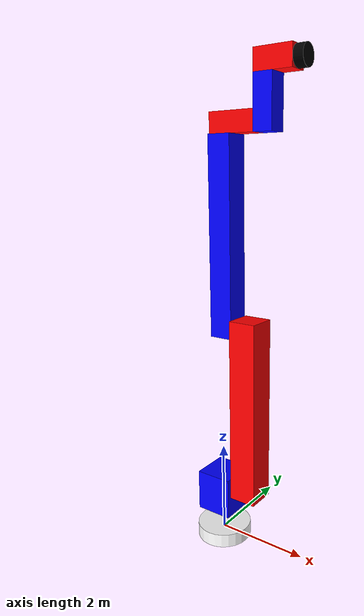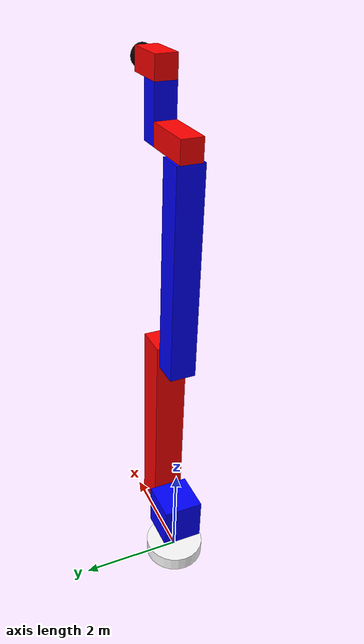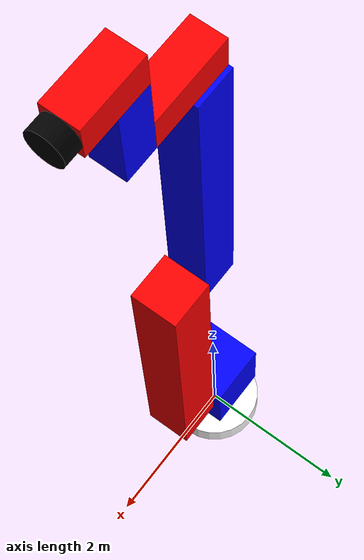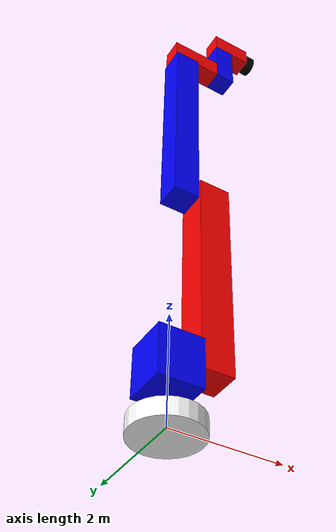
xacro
<?xml version="1.0"?>
<robot xmlns:xacro="http://www.ros.org/wiki/xacro" name="yurobot">
    <xacro:arg name="initial_positions_file" default="initial_positions.yaml" />

    <!-- Import yurobot urdf file -->
    <xacro:include filename="$(find myrobot_description)/urdf/robot_base.urdf" />

    <!-- Import control_xacro -->
    <xacro:include filename="yurobot.ros2_control.xacro" />

    <xacro:yurobot_ros2_control name="FakeSystem" initial_positions_file="$(arg initial_positions_file)"/>

</robot>

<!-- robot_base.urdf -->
<robot name="yurobot">

	<material name="Black">
		<color rgba="0 0 0 1"/>
	</material>
	<material name="White">
		<color rgba="1 1 1 1"/>
	</material>
	<material name="Blue">
		<color rgba="0 0 1 1"/>
	</material>
	<material name="Red">
		<color rgba="1 0 0 1"/>
	</material>

  <link name="world" />
  <joint name="world_joint" type="fixed">
      <origin xyz="0 0 0" rpy="0 0 0" />
      <parent link="world" />
      <child link="base_link" />
  </joint>
  <link name="base_link">
    <visual>
      <origin xyz="0 0 0" rpy="0 0 0"/>
      <geometry>
        <cylinder length="0.3" radius="0.6"/>
      </geometry>
      <material name="White"></material>
    </visual>
    <collision>
      <origin xyz="0 0 0.0" rpy="0 0 0"/>
      <geometry>
        <cylinder length="0.28" radius="0.58"/>
      </geometry>
      <material name="Black"></material>
    </collision>
    <inertial>
      <mass value="0.2"/>
      <inertia ixx="0.02" ixy="0" ixz="0" iyy="0.02" iyz="0" izz="0.03"/>
    </inertial>
  </link>

  <link name="link1">
    <visual>
      <origin xyz="0 0 0" rpy="0 0 0"/>
      <geometry>
        <box size="0.8 0.8 0.9" />
      </geometry>
      <material name="Blue"></material>
    </visual>
    <collision>
      <origin xyz="0 0 0" rpy="0 0 0"/>
      <geometry>
        <box size="0.78 0.78 0.88"/>
      </geometry>
      <material name="Black"></material>
    </collision>
    <inertial>
      <mass value="0.2"/>
      <inertia ixx="0.02" ixy="0" ixz="0" iyy="0.02" iyz="0" izz="0.016"/>
    </inertial>
  </link>

  <joint name="joint1" type="revolute">
      <parent link="base_link" />
      <child link="link1" />
      <origin xyz="0 0 1" />
      <axis xyz="0 0 1"/>
      <limit effort="1" lower="-3.14159" upper="3.14159" velocity="0.1001"/>
  </joint>

  <link name="link2">
    <visual>
      <origin xyz="0.7 0 2" rpy="0 0 0"/>
      <geometry>
        <box size="0.6 0.6 4" />
      </geometry>
      <material name="Red"></material>
    </visual>
    <collision>
      <origin xyz="0 0 0" rpy="0 0 0"/>
      <geometry>
        <box size="0.58 0.58 3.98"/>
      </geometry>
      <material name="Black"></material>
    </collision>
    <inertial>
      <mass value="0.2"/>
      <inertia ixx="0.27" ixy="0" ixz="0" iyy="0.012" iyz="0" izz="0.27"/>
    </inertial>
  </link>

  <joint name="joint2" type="revolute">
    <parent link="link1" />
    <child link="link2" />
    <origin xyz="0 0 0" />
    <axis xyz="1 0 0"/>
    <limit effort="1" lower="-1.5707" upper="1.5707" velocity="1.0001"/>
  </joint>

  <link name="link3">
    <visual>
      <origin xyz="0 0 2" rpy="0 0 0"/>
      <geometry>
        <box size="0.5 0.5 4" />
      </geometry>
      <material name="Blue"></material>
    </visual>
    <collision>
      <origin xyz="0 0 0.0" rpy="0 0 0"/>
      <geometry>
        <box size="0.48 0.48 3.98"/>
      </geometry>
      <material name="Black"></material>
    </collision>
    <inertial>
      <mass value="0.2"/>
      <inertia ixx="0.27" ixy="0" ixz="0" iyy="0.012" iyz="0" izz="0.27"/>
    </inertial>
  </link>

  <joint name="joint3" type="revolute">
    <parent link="link2" />
    <child link="link3" />
    <origin xyz="0.15 0 3.6" />
    <axis xyz="1 0 0"/>
    <limit effort="1" lower="-3.14159" upper="3.14159" velocity="1.001"/>
  </joint>

  <link name="link4">
    <visual>
      <origin xyz="0.25 0 0.2" rpy="0 1.5707 0"/>
      <geometry>
        <box size="0.4 0.4 1" />
      </geometry>
      <material name="Red"></material>
    </visual>
    <collision>
      <origin xyz="0 0 0.0" rpy="0 0 0"/>
      <geometry>
        <box size="0.38 0.38 0.98"/>
      </geometry>
      <material name="Black"></material>
    </collision>
    <inertial>
      <mass value="0.2"/>
      <inertia ixx="0.019" ixy="0" ixz="0" iyy="0.019" iyz="0" izz="0.005"/>
    </inertial>
  </link>

  <joint name="joint4" type="revolute">
    <parent link="link3" />
    <child link="link4" />
    <origin xyz="0 0 4" />
    <axis xyz="0 0 1"/>
    <limit effort="1" lower="-3.14159" upper="3.14159" velocity="1.001"/>
  </joint>

  <link name="link5">
    <visual>
      <origin xyz="0.2 0 0.3" rpy="0 0 0"/>
      <geometry>
        <box size="0.4 0.4 1" />
      </geometry>
      <material name="Blue"></material>
    </visual>
    <collision>
      <origin xyz="0 0 0" rpy="0 0 0"/>
      <geometry>
        <box size="0.38 0.38 0.98"/>
      </geometry>
      <material name="Black"></material>
    </collision>
    <inertial>
      <mass value="0.2"/>
      <inertia ixx="0.019" ixy="0" ixz="0" iyy="0.005" iyz="0" izz="0.019"/>
    </inertial>
  </link>

  <joint name="joint5" type="revolute">
    <parent link="link4" />
    <child link="link5" />
    <origin xyz="0.75 0 0.2" />
    <axis xyz="1 0 0"/>
    <limit effort="1" lower="-3.14159" upper="3.14159" velocity="1.001"/>
  </joint>

  <link name="link6">
    <visual>
      <origin xyz="0.2 0 0.2" rpy="0 1.5707 0"/>
      <geometry>
        <box size="0.4 0.4 0.8" />
      </geometry>
      <material name="Red"></material>
    </visual>
    <collision>
      <origin xyz="0 0 0" rpy="0 0 0"/>
      <geometry>
        <box size="0.38 0.38 0.78"/>
      </geometry>
      <material name="Black"></material>
    </collision>
    <inertial>
      <mass value="0.2"/>
      <inertia ixx="0.013" ixy="0" ixz="0" iyy="0.013" iyz="0" izz="0.005"/>
    </inertial>
  </link>

  <joint name="joint6" type="revolute">
    <parent link="link5" />
    <child link="link6" />
    <origin xyz="0.2 0 0.8" />
    <axis xyz="0 0 1"/>
    <limit effort="1" lower="-3.14159" upper="3.14159" velocity="1.0001"/>
  </joint>

  <link name="link7">
    <visual>
      <origin xyz="0.1 0 0" rpy="0 1.5707 0"/>
      <geometry>
        <cylinder length="0.2" radius="0.2"/>
      </geometry>
      <material name="Black"></material>
    </visual>
    <collision>
      <origin xyz="0 0 0" rpy="0 0 0"/>
      <geometry>
        <cylinder length="0.18" radius="0.18"/>
      </geometry>
      <material name="Black"></material>
    </collision>
    <inertial>
      <mass value="0.2"/>
      <inertia ixx="0.01" ixy="0" ixz="0" iyy="0.01" iyz="0" izz="0.01"/>
    </inertial>
  </link>

  <joint name="joint7" type="revolute">
    <parent link="link6" />
    <child link="link7" />
    <origin xyz="0.6 0 0.2" />
    <axis xyz="1 0 0"/>
    <limit effort="1" lower="-3.14159" upper="3.14159" velocity="1.0001"/>
  </joint>

  <gazebo reference="base_link">
      <material>Gazebo/Black</material>
      <gravity>true</gravity>
      <selfCollide>false</selfCollide>
  </gazebo>
  <gazebo reference="link1">
      <material>Gazebo/Gray</material>
      <selfCollide>false</selfCollide>
  </gazebo>
  <gazebo reference="link2">
      <material>Gazebo/Red</material>
      <selfCollide>false</selfCollide>
  </gazebo>
  <gazebo reference="link3">
      <material>Gazebo/Blue</material>
  </gazebo>
  <gazebo reference="link4">
      <material>Gazebo/Green</material>
  </gazebo>
  <gazebo reference="link5">
      <material>Gazebo/Yellow</material>
  </gazebo>
  <gazebo reference="link6">
      <material>Gazebo/Orange</material>
  </gazebo>
  <gazebo reference="link7">
      <material>Gazebo/White</material>
  </gazebo>

  <ros2_control name="GazeboSystem" type="system">
    <hardware>
        <plugin>gazebo_ros2_control/GazeboSystem</plugin>
    </hardware>
    <joint name="joint1">
        <command_interface name="position">
            <param name="min">-1</param>
            <param name="max">1</param>
        </command_interface>
        <state_interface name="position">
            <param name="initial_value">0.0</param>
        </state_interface>
        <state_interface name="velocity"/>
    </joint>
    <joint name="joint2">
        <command_interface name="position">
            <param name="min">-1</param>
            <param name="max">1</param>
        </command_interface>
        <state_interface name="position">
            <param name="initial_value">0.0</param>
        </state_interface>
        <state_interface name="velocity"/>
    </joint>
    <joint name="joint3">
        <command_interface name="position">
            <param name="min">-1</param>
            <param name="max">1</param>
        </command_interface>
        <state_interface name="position">
            <param name="initial_value">0.0</param>
        </state_interface>
        <state_interface name="velocity"/>
    </joint>
    <joint name="joint4">
        <command_interface name="position">
            <param name="min">-1</param>
            <param name="max">1</param>
        </command_interface>
        <state_interface name="position">
            <param name="initial_value">0.0</param>
        </state_interface>
        <state_interface name="velocity"/>
    </joint>
    <joint name="joint5">
        <command_interface name="position">
            <param name="min">-1</param>
            <param name="max">1</param>
        </command_interface>
        <state_interface name="position">
            <param name="initial_value">0.0</param>
        </state_interface>
        <state_interface name="velocity"/>
    </joint>
    <joint name="joint6">
        <command_interface name="position">
            <param name="min">-1</param>
            <param name="max">1</param>
        </command_interface>
        <state_interface name="position">
            <param name="initial_value">0.0</param>
        </state_interface>
        <state_interface name="velocity"/>
    </joint>
    <joint name="joint7">
      <command_interface name="position">
          <param name="min">-1</param>
          <param name="max">1</param>
      </command_interface>
      <state_interface name="position">
          <param name="initial_value">0.0</param>
      </state_interface>
      <state_interface name="velocity"/>
    </joint>
  </ros2_control>

  <gazebo>
      <plugin filename="libgazebo_ros2_control.so" name="gazebo_ros2_control">
          <parameters>/home/yu/ros_project/myrobot_ws/src/myrobot/config/ros2_controllers.yaml</parameters>
          <robot_param_node>robot_state_publisher</robot_param_node>
      </plugin>
  </gazebo>

</robot>
